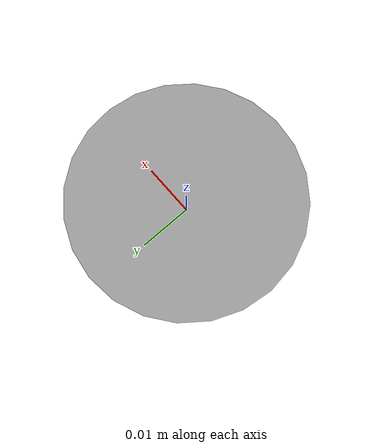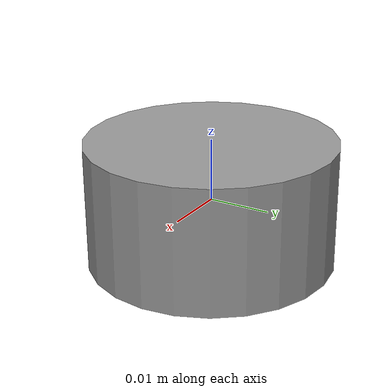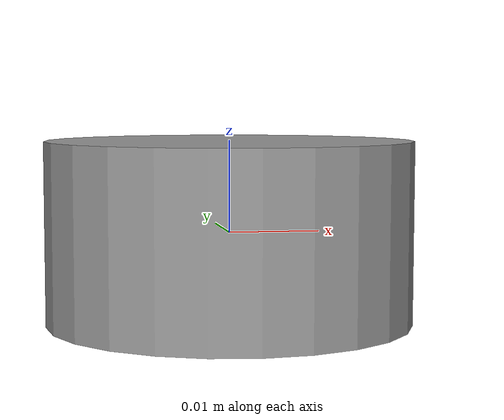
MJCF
<mujoco model="ak45_36_joint">
  <compiler angle="radian" autolimits="true"/>

  <!-- timestep はPi実機の1kHzサンプリング(config.yaml experiment.sysid_excitation.dt)に
       合わせている。sysid.TimeSeries はリサンプリングにも対応するため必須ではないが、
       揃えておけばフェーズ3のCSVアダプタでの補間が不要になる。 -->
  <!--contactとは衝突判定の有効/無効を指定するオプション。フェーズ2では実機側で安全側の制限をかけているため、ここでは無効化している。
  -->
  <option integrator="implicitfast" timestep="0.001">
    <flag contact="disable"/>
  </option>

  <!-- worldbody とは、MuJoCo の物理シミュレーション空間に配置される物体の定義をまとめたセクション。 -->
  <worldbody>
    <body name="output_shaft" pos="0 0 0">      <!-- output_shaft とは、AK45-36 の出力軸の回転中心を表す body。 -->
      <!-- プレースホルダー値。実体の慣性は joint armature が担う（上記コメント参照）。 -->
      <!-- inertial とは、body の質量・慣性を定義する要素。pos は重心位置、mass は質量、diaginertia は慣性テンソルの対角成分を表す。 -->
      <inertial pos="0 0 0" mass="0.05" diaginertia="1e-5 1e-5 1e-5"/>
      <!-- joint とは、body 間の相対運動を定義する要素。name は関節名、type は関節の種類（hinge は回転関節）、axis は回転軸の方向、range は可動範囲、armature はリフレクトされたロータ慣性、damping は減衰係数、frictionloss は摩擦損失を表す。 -->
      <joint name="ak45_joint" type="hinge" axis="0 0 1" range="-3.14 3.14" armature="0.01" damping="0.0" frictionloss="0.0"/>
      <!-- geom とは、body の形状を定義する要素。type は形状の種類（cylinder は円柱）、size は半径と高さ、rgba は色と透明度を表す。 -->
      <geom type="cylinder" size="0.02 0.01" rgba="0.6 0.6 0.6 1"/>
    </body>
  </worldbody>

  <!-- actuator とは、関節に作用するアクチュエータ（モータやトルク源）を定義するセクション。 -->
  <actuator>
    <!-- gear="1": 実機側で既にGEAR_RATIO・Kt_actual換算済みの出力軸トルク[Nm]を
         そのまま受け取る（motor.set_output_torque_newton_meters() と同じ単位系）。 -->
    <!-- フェーズ2では実機側で安全側の制限をかけているため、ここでは無効化している。 -->
    <!-- name はアクチュエータ名、joint は作用する関節名、gear はギア比を表す。 -->
    <motor name="joint_torque" joint="ak45_joint" gear="1"/>
  </actuator>

  <!-- sensor とは、関節の状態を計測するセンサーを定義するセクション。 -->
  <sensor>
    <!-- センサー名をCSV列名と一致させ、フェーズ3で sysid.TimeSeries.from_names() による
         名前ベースの自動マッピングをそのまま使えるようにしている。 -->
    <!-- jointpos は関節角度を計測するセンサー。 -->
    <jointpos name="output_angle" joint="ak45_joint"/>
    <!-- jointvel は関節速度を計測するセンサー。 -->
    <jointvel name="output_velocity" joint="ak45_joint"/>
  </sensor>
</mujoco>
